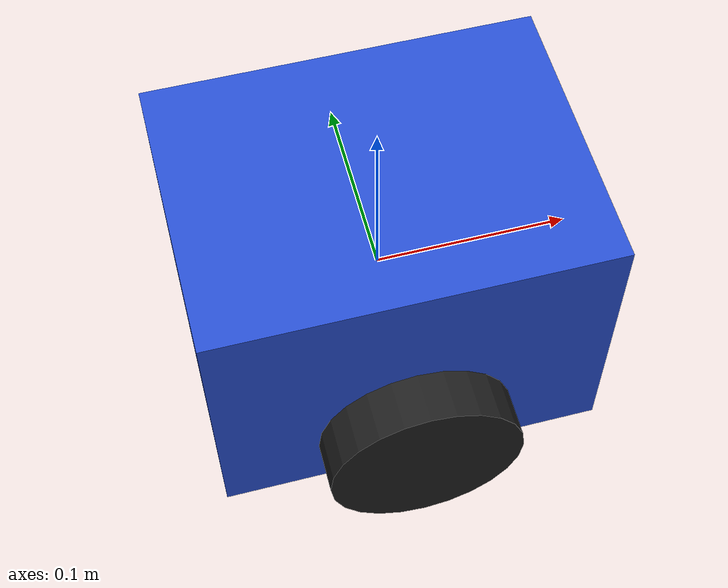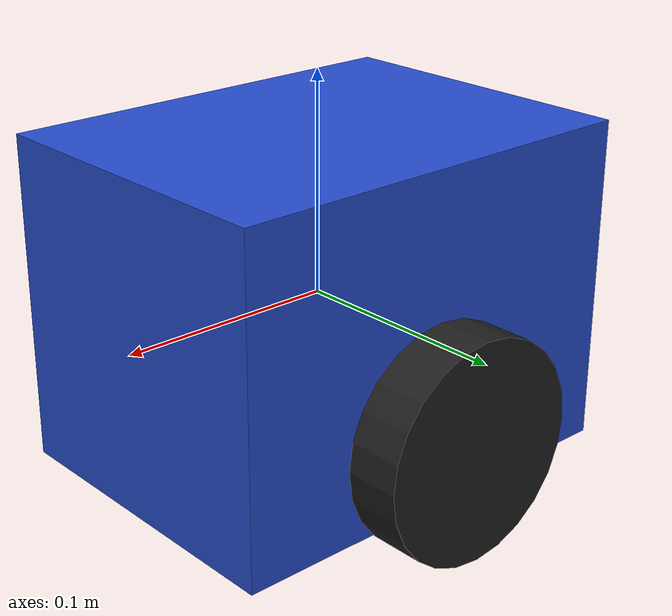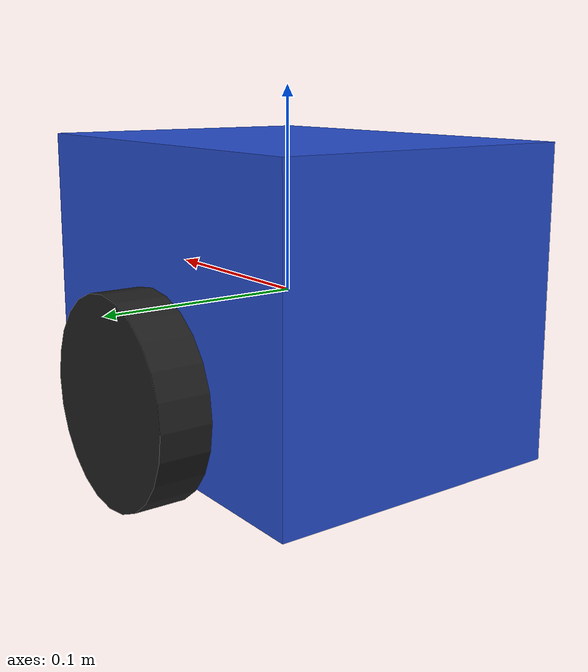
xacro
<?xml version='1.0'?>
<!-- x-green y-red z-blue - for all values - depending on where robot is facing - generally x-->
<robot name="amp_robot" xmlns:xacro="http://www.ros.org/wiki/xacro">

	<xacro:include filename="$(find amp_robot)/urdf/amp_robot.gazebo" />
	<xacro:include filename="$(find amp_robot)/urdf/bumper.urdf.xacro" />

	<link name="robot_footprint"></link>

	<joint name="robot_footprint_joint" type="fixed">
		<origin xyz="0 0 0" rpy="0 0 0" />
    <parent link="robot_footprint" />
    <child link="chassis" />
	</joint>

  <link name="chassis">
		<pose>0 0 0.1 0 0 0</pose>

		<inertial>
			<mass value="15.0" />
			<origin xyz="0.0 0 0" rpy="0 0 0"/>
			<inertia
				ixx="0.1" ixy="0" ixz="0"
				iyy="0.1"	iyz="0"
				izz="0.1"
			/>
		</inertial>

		<collision name="collision">
			<origin xyz="0.0 0 0" rpy="0 0 0"/>
			<geometry>
				<box size=".2 .15 .15"/>
			</geometry>
		</collision>

		<visual name="chassis_visual">
			<origin xyz="0.0 0 0" rpy="0 0 0"/>
			<geometry>
				<box size=".2 .15 .15"/>
			</geometry>
		</visual>

		<collision name="back_caster_collision">
			<origin xyz="-0.06 0 -0.06" rpy="0 0 0"/>
			<geometry>
				<sphere radius="0.0299"/>
			</geometry>
		</collision>

		<visual name="back_caster_visual">
			<origin xyz="-0.06 0 -0.06" rpy="0 0 0"/>
			<geometry>
				<sphere radius="0.03"/>
			</geometry>
		</visual>

		<collision name="front_caster_collision">
			<origin xyz="0.06 0 -0.06" rpy="0 0 0"/>
			<geometry>
				<sphere radius="0.0299"/>
			</geometry>
		</collision>

		<visual name="front_caster_visual">
			<origin xyz="0.06 0 -0.06" rpy="0 0 0"/>
			<geometry>
				<sphere radius="0.03"/>
			</geometry>
		</visual>

	</link>

	<link name="left_wheel">

		<inertial>
			<mass value="5.0" />
			<origin xyz="0 0 0" rpy="0 1.5707 1.5707"/>
			<inertia
				ixx="0.1" ixy="0" ixz="0"
				iyy="0.1" iyz="0"
				izz="0.1"
			/>
		</inertial>

		<collision name="left_wheel_collision">
			<origin xyz="0 0 0" rpy="0 1.5707 1.5707"/>
			<geometry>
				<cylinder radius="0.0499" length="0.02499"/>
			</geometry>
		</collision>

		<visual name="left_wheel_visual">
			<origin xyz="0 0 0" rpy="0 1.5707 1.5707"/>
			<geometry>
				<cylinder radius="0.05" length="0.025"/>
			</geometry>
		</visual>

	</link>

	<link name="right_wheel">

		<inertial>
			<mass value="5.0" />
			<origin xyz="0 0 0" rpy="0 1.5707 1.5707"/>
			<inertia
				ixx="0.1" ixy="0" ixz="0"
				iyy="0.1" iyz="0"
				izz="0.1"
			/>
		</inertial>

		<collision name="right_wheel_collision">
			<origin xyz="0 0 0" rpy="0 1.5707 1.5707"/>
			<geometry>
				<cylinder radius="0.0499" length="0.02499"/>
			</geometry>
		</collision>

		<visual name="right_wheel_visual">
			<origin xyz="0 0 0" rpy="0 1.5707 1.5707"/>
			<geometry>
				<cylinder radius="0.05" length="0.025"/>
			</geometry>
		</visual>

	</link>

	<joint name="left_wheel_hinge" type="continuous">
		<origin xyz="0 0.088 -0.04" rpy="0 0 0"/>
		<child link="left_wheel"/>
		<parent link="chassis"/>
		<axis xyz="0 1 0" rpy="0 0 0"/>
		<limit effort="10000" velocity="1000"/>
		<dynamics damping="1.0" friction="1.0"/>
	</joint>

	<joint name="right_wheel_hinge" type="continuous">
		<origin xyz="0 -0.088 -0.04" rpy="0 0 0"/>
		<child link="right_wheel"/>
		<parent link="chassis"/>
		<axis xyz="0 1 0" rpy="0 0 0"/>
		<limit effort="10000" velocity="1000"/>
		<dynamics damping="1.0" friction="1.0"/>
	</joint>

	<xacro:macro name="base" params="name">
  	<xacro:bumper name="bumper" parent="chassis" ros_topic="bumper_state" update_rate="15.0" >
    	<origin xyz="0 0 0" rpy="0 0 0"/>
  	</xacro:bumper>
	</xacro:macro>

	<gazebo reference="chassis">
    <material>Gazebo/Blue</material>
  </gazebo>

  <gazebo reference="left_wheel">
    <material>Gazebo/Black</material>
  </gazebo>

  <gazebo reference="right_wheel">
    <material>Gazebo/Black</material>
  </gazebo>

</robot>
